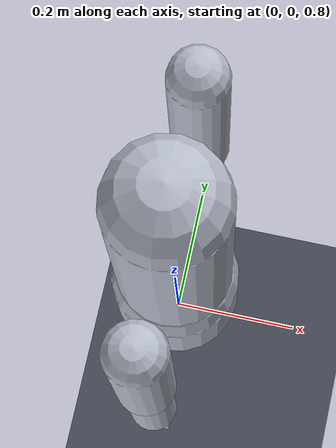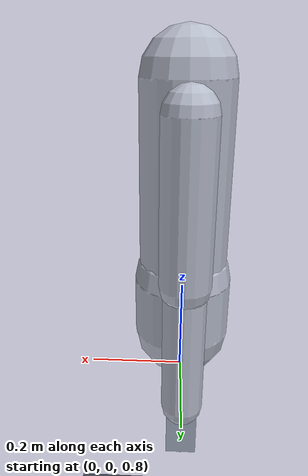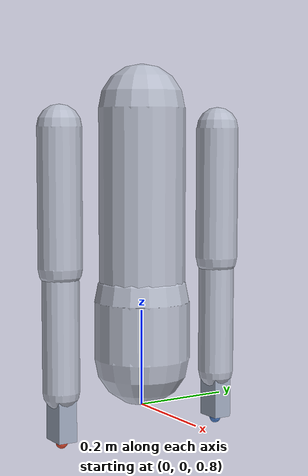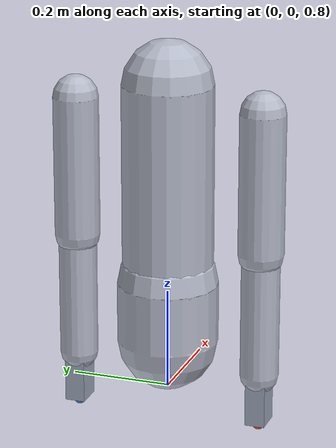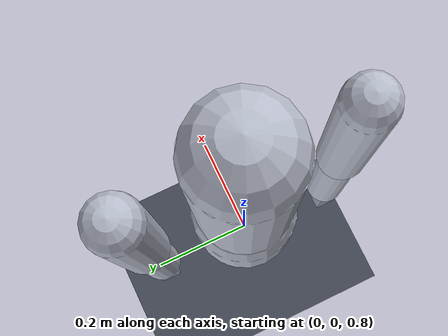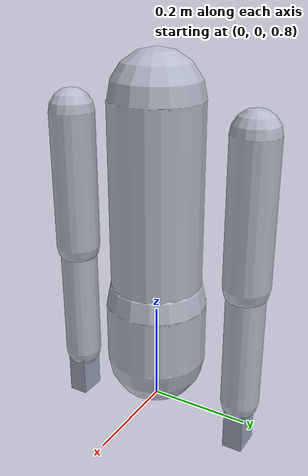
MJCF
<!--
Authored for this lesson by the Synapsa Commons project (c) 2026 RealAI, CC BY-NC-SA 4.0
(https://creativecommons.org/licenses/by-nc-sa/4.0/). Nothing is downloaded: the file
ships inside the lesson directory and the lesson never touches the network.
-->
<mujoco model="f15l02_upper_body">
  <compiler angle="radian" autolimits="true"/>

  <option timestep="0.002" gravity="0 0 -9.81">
    <!-- Nothing in this task touches anything. -->
    <flag contact="disable"/>
  </option>

  <visual>
    <rgba haze="0.15 0.25 0.35 1"/>
    <global elevation="-15" azimuth="130"/>
  </visual>

  <default>
    <geom type="capsule" contype="0" conaffinity="0" rgba="0.72 0.74 0.80 1"/>
    <joint type="hinge" armature="0.01" damping="0.5"/>
  </default>

  <worldbody>
    <light pos="0 0 3" dir="0 0 -1" diffuse="0.8 0.8 0.8"/>
    <geom name="floor" type="plane" size="3 3 0.1" pos="0 0 0" rgba="0.26 0.28 0.33 1"
          contype="0" conaffinity="0"/>

    <!-- No joint on the pelvis: it is welded to the world, so every dof below is a named
         joint and nq == nv. -->
    <body name="pelvis" pos="0 0 0.90">
      <geom name="pelvis_geom" fromto="0 0 0 0 0 0.12" size="0.10" mass="12"/>

      <body name="torso" pos="0 0 0.12">
        <joint name="waist_yaw"   axis="0 0 1" range="-1.2 1.2"/>
        <joint name="waist_pitch" axis="0 1 0" range="-0.7 0.7"/>
        <geom name="torso_geom" fromto="0 0 0 0 0 0.40" size="0.09" mass="18"/>

        <body name="upper_arm_right" pos="0 -0.19 0.36">
          <joint name="shoulder_r_pitch" axis="0 1 0" range="-2.6 1.6"/>
          <joint name="shoulder_r_roll"  axis="1 0 0" range="-1.6 0.4"/>
          <joint name="shoulder_r_yaw"   axis="0 0 1" range="-1.5 1.5"/>
          <geom name="uar_geom" fromto="0 0 0 0 0 -0.28" size="0.045" mass="2.0"/>

          <body name="lower_arm_right" pos="0 0 -0.28">
            <joint name="elbow_r" axis="0 1 0" range="-2.4 0.0"/>
            <geom name="lar_geom" fromto="0 0 0 0 0 -0.25" size="0.038" mass="1.4"/>

            <body name="hand_right" pos="0 0 -0.25">
              <joint name="wrist_r_pitch" axis="0 1 0" range="-1.2 1.2"/>
              <joint name="wrist_r_roll"  axis="1 0 0" range="-1.2 1.2"/>
              <geom name="hand_geom" type="box" size="0.028 0.020 0.050" pos="0 0 -0.05"
                    mass="0.5" rgba="0.62 0.66 0.74 1"/>
              <!-- 0.105 m beyond the hand frame origin: the whole frames section rests on
                   this offset being real and non-zero. -->
              <site name="palm" pos="0 0 -0.105" size="0.012" rgba="0.90 0.30 0.20 1"/>
            </body>
          </body>
        </body>

        <!-- Two dofs that cannot move the right palm. Their Jacobian columns are exactly
             zero, which is the point. -->
        <body name="upper_arm_left" pos="0 0.19 0.36">
          <joint name="shoulder_l_pitch" axis="0 1 0" range="-2.6 1.6"/>
          <geom name="ual_geom" fromto="0 0 0 0 0 -0.28" size="0.045" mass="2.0"/>

          <body name="lower_arm_left" pos="0 0 -0.28">
            <joint name="elbow_l" axis="0 1 0" range="-2.4 0.0"/>
            <geom name="lal_geom" fromto="0 0 0 0 0 -0.25" size="0.038" mass="1.4"/>

            <body name="hand_left" pos="0 0 -0.25">
              <geom name="handl_geom" type="box" size="0.028 0.020 0.050" pos="0 0 -0.05"
                    mass="0.5" rgba="0.62 0.66 0.74 1"/>
              <site name="palm_left" pos="0 0 -0.105" size="0.012" rgba="0.30 0.50 0.80 1"/>
            </body>
          </body>
        </body>
      </body>
    </body>
  </worldbody>

  <keyframe>
    <key name="ready" qpos="0.0 0.10 -0.45 -0.25 0.0 -0.85 0.10 0.0 -0.30 -0.60"/>
  </keyframe>
</mujoco>
